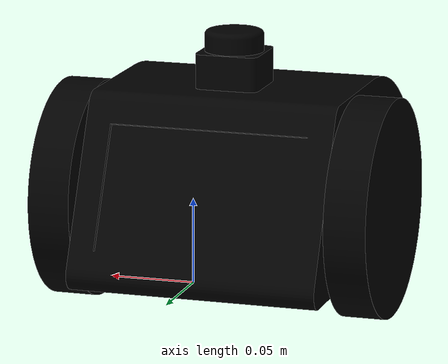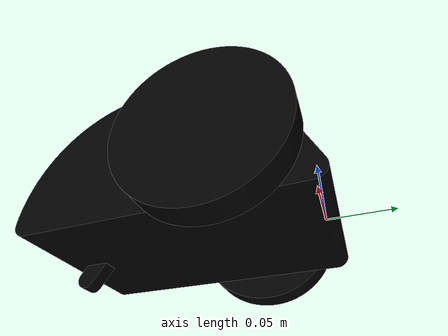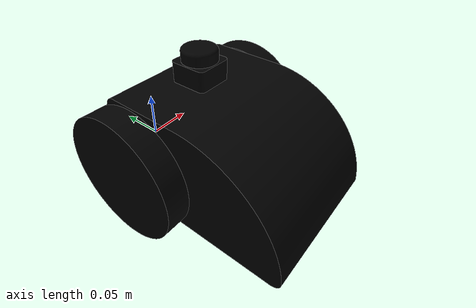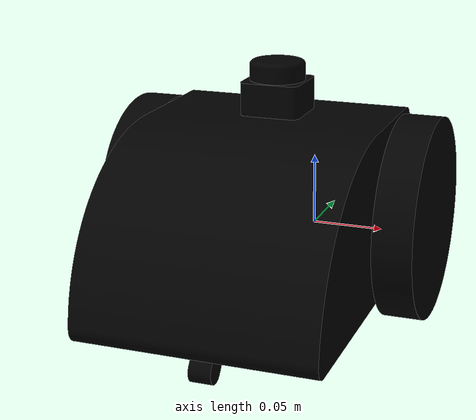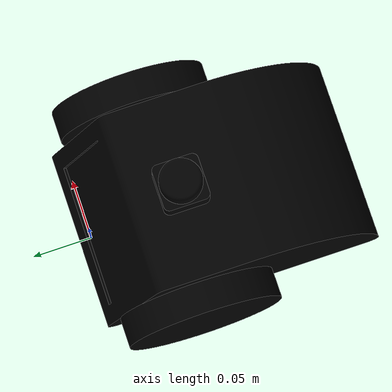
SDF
<?xml version="1.0" ?>

<sdf version='1.9'>
  <model name='URDF'>
    <link name='base_link'>
      <inertial>
        <pose>0.04438135250210484 -0.1061778793367964 0.04733381165238545 0 0 0</pose>
        <mass>25.1623688204694</mass>
        <inertia>
          <ixx>0.1098716038830415</ixx>
          <ixy>0.00025559737379302061</ixy>
          <ixz>0.00092271634194572572</ixz>
          <iyy>0.072372669004639165</iyy>
          <iyz>-0.0029964494892606862</iyz>
          <izz>0.132267591521045</izz>
        </inertia>
      </inertial>
      <collision name='base_link_fixed_joint_lump__caster_link_collision'>
        <pose>0 0 0 0 0 0</pose>
        <geometry>
          <mesh>
            <scale>0.001 0.001 0.001</scale>
            <uri>file:/home/fionn/sec_bot_ws/src/sec_bot_ros2/meshes/caster_link_1.stl</uri>
          </mesh>
        </geometry>
      </collision>
      <collision name='base_link_fixed_joint_lump__chassis_link_collision_1'>
        <pose>0 0 0 0 0 0</pose>
        <geometry>
          <mesh>
            <scale>0.001 0.001 0.001</scale>
            <uri>file:/home/fionn/sec_bot_ws/src/sec_bot_ros2/meshes/base_link.stl</uri>
          </mesh>
        </geometry>
      </collision>
      <collision name='base_link_fixed_joint_lump__lidar_link_collision_2'>
        <pose>0 0 0 0 0 0</pose>
        <geometry>
          <mesh>
            <scale>0.001 0.001 0.001</scale>
            <uri>file:/home/fionn/sec_bot_ws/src/sec_bot_ros2/meshes/lidar_link_1.stl</uri>
          </mesh>
        </geometry>
      </collision>
      <visual name='base_link_fixed_joint_lump__caster_link_visual'>
        <pose>0 0 0 0 0 0</pose>
        <geometry>
          <mesh>
            <scale>0.001 0.001 0.001</scale>
            <uri>file:/home/fionn/sec_bot_ws/src/sec_bot_ros2/meshes/caster_link_1.stl</uri>
          </mesh>
        </geometry>
        <material>
          <diffuse>0 0 0 1</diffuse>
          <ambient>0 0 0 1</ambient>
        </material>
      </visual>
      <visual name='base_link_fixed_joint_lump__chassis_link_visual_1'>
        <pose>0 0 0 0 0 0</pose>
        <geometry>
          <mesh>
            <scale>0.001 0.001 0.001</scale>
            <uri>file:/home/fionn/sec_bot_ws/src/sec_bot_ros2/meshes/base_link.stl</uri>
          </mesh>
        </geometry>
        <material>
          <diffuse>0 0 0 1</diffuse>
          <ambient>0 0 0 1</ambient>
        </material>
      </visual>
      <visual name='base_link_fixed_joint_lump__lidar_link_visual_2'>
        <pose>0 0 0 0 0 0</pose>
        <geometry>
          <mesh>
            <scale>0.001 0.001 0.001</scale>
            <uri>file:/home/fionn/sec_bot_ws/src/sec_bot_ros2/meshes/lidar_link_1.stl</uri>
          </mesh>
        </geometry>
        <material>
          <diffuse>0 0 0 1</diffuse>
          <ambient>0 0 0 1</ambient>
        </material>
      </visual>
    </link>
    <joint name='left_wheel_joint' type='revolute'>
      <pose relative_to='base_link'>-0.075 -0.065937 0.03563 0 0 0</pose>
      <parent>base_link</parent>
      <child>left_wheel_link</child>
      <axis>
        <xyz>-1 0 0</xyz>
        <limit>
          <lower>-10000000000000000</lower>
          <upper>10000000000000000</upper>
        </limit>
        <dynamics>
          <spring_reference>0</spring_reference>
          <spring_stiffness>0</spring_stiffness>
        </dynamics>
      </axis>
    </joint>
    <link name='left_wheel_link'>
      <pose relative_to='left_wheel_joint'>0 0 0 0 0 0</pose>
      <inertial>
        <pose>0 0 0 0 0 0</pose>
        <mass>2.6048711836780609</mass>
        <inertia>
          <ixx>0.0055030000000000001</ixx>
          <ixy>0</ixy>
          <ixz>0</ixz>
          <iyy>0.0028869999999999998</iyy>
          <iyz>0</iyz>
          <izz>0.0028869999999999998</izz>
        </inertia>
      </inertial>
      <collision name='left_wheel_link_collision'>
        <pose>0.075 0.065937 -0.03563 0 0 0</pose>
        <geometry>
          <mesh>
            <scale>0.001 0.001 0.001</scale>
            <uri>file:/home/fionn/sec_bot_ws/src/sec_bot_ros2/meshes/left_wheel_link_1.stl</uri>
          </mesh>
        </geometry>
      </collision>
      <visual name='left_wheel_link_visual'>
        <pose>0.075 0.065937 -0.03563 0 0 0</pose>
        <geometry>
          <mesh>
            <scale>0.001 0.001 0.001</scale>
            <uri>file:/home/fionn/sec_bot_ws/src/sec_bot_ros2/meshes/left_wheel_link_1.stl</uri>
          </mesh>
        </geometry>
        <material>
          <diffuse>0 0 0 1</diffuse>
          <ambient>0 0 0 1</ambient>
        </material>
      </visual>
    </link>
    <joint name='right_wheel_joint' type='revolute'>
      <pose relative_to='base_link'>0.075 -0.065937 0.03563 0 0 0</pose>
      <parent>base_link</parent>
      <child>right_wheel_link</child>
      <axis>
        <xyz>-1 0 0</xyz>
        <limit>
          <lower>-10000000000000000</lower>
          <upper>10000000000000000</upper>
        </limit>
        <dynamics>
          <spring_reference>0</spring_reference>
          <spring_stiffness>0</spring_stiffness>
        </dynamics>
      </axis>
    </joint>
    <link name='right_wheel_link'>
      <pose relative_to='right_wheel_joint'>0 0 0 0 0 0</pose>
      <inertial>
        <pose>-0.03054194831388796 -0.001957133202892432 -0.007340509604943389 0 0 0</pose>
        <mass>2.6048711836780609</mass>
        <inertia>
          <ixx>0.0055030000000000001</ixx>
          <ixy>0</ixy>
          <ixz>0</ixz>
          <iyy>0.0028869999999999998</iyy>
          <iyz>0</iyz>
          <izz>0.0028869999999999998</izz>
        </inertia>
      </inertial>
      <collision name='right_wheel_link_collision'>
        <pose>-0.075 0.065937 -0.03563 0 0 0</pose>
        <geometry>
          <mesh>
            <scale>0.001 0.001 0.001</scale>
            <uri>file:/home/fionn/sec_bot_ws/src/sec_bot_ros2/meshes/right_wheel_link_1.stl</uri>
          </mesh>
        </geometry>
      </collision>
      <visual name='right_wheel_link_visual'>
        <pose>-0.075 0.065937 -0.03563 0 0 0</pose>
        <geometry>
          <mesh>
            <scale>0.001 0.001 0.001</scale>
            <uri>file:/home/fionn/sec_bot_ws/src/sec_bot_ros2/meshes/right_wheel_link_1.stl</uri>
          </mesh>
        </geometry>
        <material>
          <diffuse>0 0 0 1</diffuse>
          <ambient>0 0 0 1</ambient>
        </material>
      </visual>
    </link>
    <frame name='caster_joint' attached_to='base_link'>
      <pose>0 -0.196024 -0.01 0 -0 0</pose>
    </frame>
    <frame name='caster_link' attached_to='caster_joint'/>
    <frame name='chassis_joint' attached_to='base_link'>
      <pose>0 0 0 0 -0 0</pose>
    </frame>
    <frame name='chassis_link' attached_to='chassis_joint'/>
    <frame name='lidar_joint' attached_to='base_link'>
      <pose>0 -0.079076 0.100631 0 -0 0</pose>
    </frame>
    <frame name='lidar_link' attached_to='lidar_joint'/>
  </model>
</sdf>
